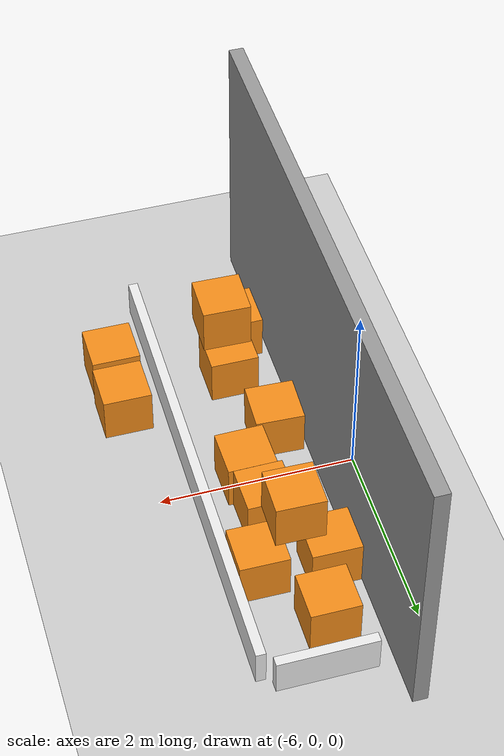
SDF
<sdf version="1.6">
 <world name="default">
  <model name="ground_plane">
   <static>1</static>
   <link name="link">
    <collision name="collision">
     <geometry><plane><normal>0 0 1</normal><size>100 100</size></plane></geometry>
     <surface>
      <contact><collide_bitmask>65535</collide_bitmask></contact>
      <friction><ode><mu>100</mu><mu2>50</mu2></ode></friction>
     </surface>
    </collision>
    <visual name="visual">
     <cast_shadows>0</cast_shadows>
     <geometry><plane><normal>0 0 1</normal><size>100 100</size></plane></geometry>
     <material>
      <script><uri>file://media/materials/scripts/gazebo.material</uri><name>Gazebo/Grey</name></script>
     </material>
    </visual>
   </link>
  </model>
  <model name="nrsl">
   <link name="Wall_3">
    <pose>-5.41 2.97 0 0 0 -1.5708</pose>
    <visual name="Wall_3_Visual">
     <pose>0 0 1.45 0 -0 0</pose>
     <geometry><box><size>6.09 0.15 2.9</size></box></geometry>
     <material>
      <script><uri>file://media/materials/scripts/gazebo.material</uri><name>Gazebo/Grey</name></script>
      <ambient>1 1 1 1</ambient>
     </material>
     <meta><layer>0</layer></meta>
    </visual>
    <collision name="Wall_3_Collision">
     <pose>0 0 1.45 0 -0 0</pose>
     <geometry><box><size>6.09 0.15 2.9</size></box></geometry>
     <surface>
      <friction>
       <ode><mu>1</mu><mu2>1</mu2><fdir1>0 0 0</fdir1><slip1>0</slip1><slip2>0</slip2></ode>
       <torsional>
        <coefficient>1</coefficient>
        <patch_radius>0</patch_radius>
        <surface_radius>0</surface_radius>
        <use_patch_radius>1</use_patch_radius>
        <ode><slip>0</slip></ode>
       </torsional>
      </friction>
      <bounce><restitution_coefficient>0</restitution_coefficient><threshold>1e+06</threshold></bounce>
      <contact>
       <collide_without_contact>0</collide_without_contact>
       <collide_without_contact_bitmask>1</collide_without_contact_bitmask>
       <collide_bitmask>1</collide_bitmask>
       <ode>
        <soft_cfm>0</soft_cfm>
        <soft_erp>0.2</soft_erp>
        <kp>1e+13</kp>
        <kd>1</kd>
        <max_vel>0.01</max_vel>
        <min_depth>0</min_depth>
       </ode>
       <bullet>
        <split_impulse>1</split_impulse>
        <split_impulse_penetration_threshold>-0.01</split_impulse_penetration_threshold>
        <soft_cfm>0</soft_cfm>
        <soft_erp>0.2</soft_erp>
        <kp>1e+13</kp>
        <kd>1</kd>
       </bullet>
      </contact>
     </surface>
    </collision>
   </link>
   <static>1</static>
   <pose>-0.282297 -3.10716 0 0 -0 0</pose>
  </model>
  <model name="fence1_1">
   <link name="link">
    <inertial>
     <mass>1</mass>
     <inertia>
      <ixx>0.166667</ixx>
      <ixy>0</ixy>
      <ixz>0</ixz>
      <iyy>0.166667</iyy>
      <iyz>0</iyz>
      <izz>0.166667</izz>
     </inertia>
    </inertial>
    <visual name="visual">
     <geometry><box><size>1 0.1 0.4</size></box></geometry>
     <material>
      <script><name>Gazebo/White</name><uri>file://media/materials/scripts/gazebo.material</uri></script>
     </material>
     <pose>0 0 0.2 0 -0 0</pose>
    </visual>
    <collision name="collision">
     <pose>0 0 0.2 0 -0 0</pose>
     <geometry><box><size>1 0.1 0.4</size></box></geometry>
     <surface>
      <friction>
       <ode><mu>1</mu><mu2>1</mu2><fdir1>0 0 0</fdir1><slip1>0</slip1><slip2>0</slip2></ode>
       <torsional>
        <coefficient>1</coefficient>
        <patch_radius>0</patch_radius>
        <surface_radius>0</surface_radius>
        <use_patch_radius>1</use_patch_radius>
        <ode><slip>0</slip></ode>
       </torsional>
      </friction>
      <bounce><restitution_coefficient>0</restitution_coefficient><threshold>1e+06</threshold></bounce>
      <contact>
       <collide_without_contact>0</collide_without_contact>
       <collide_without_contact_bitmask>1</collide_without_contact_bitmask>
       <collide_bitmask>1</collide_bitmask>
       <ode>
        <soft_cfm>0</soft_cfm>
        <soft_erp>0.2</soft_erp>
        <kp>1e+13</kp>
        <kd>1</kd>
        <max_vel>0.01</max_vel>
        <min_depth>0</min_depth>
       </ode>
       <bullet>
        <split_impulse>1</split_impulse>
        <split_impulse_penetration_threshold>-0.01</split_impulse_penetration_threshold>
        <soft_cfm>0</soft_cfm>
        <soft_erp>0.2</soft_erp>
        <kp>1e+13</kp>
        <kd>1</kd>
       </bullet>
      </contact>
     </surface>
    </collision>
   </link>
   <static>0</static>
   <pose>-4.95728 2.40507 -4e-06 0 -8e-06 0</pose>
  </model>
  <model name="box_0">
   <link name="link">
    <inertial>
     <mass>1</mass>
     <inertia>
      <ixx>0.166667</ixx>
      <ixy>0</ixy>
      <ixz>0</ixz>
      <iyy>0.166667</iyy>
      <iyz>0</iyz>
      <izz>0.166667</izz>
     </inertia>
    </inertial>
    <visual name="visual">
     <geometry><box><size>0.5 0.5 0.5</size></box></geometry>
     <material>
      <script><name>Gazebo/Orange</name><uri>file://media/materials/scripts/gazebo.material</uri></script>
     </material>
     <pose>0 0 0.25 0 -0 0</pose>
    </visual>
    <collision name="collision">
     <pose>0 0 0.25 0 -0 0</pose>
     <geometry><box><size>0.5 0.5 0.5</size></box></geometry>
     <surface>
      <friction>
       <ode><mu>1</mu><mu2>1</mu2><fdir1>0 0 0</fdir1><slip1>0</slip1><slip2>0</slip2></ode>
       <torsional>
        <coefficient>1</coefficient>
        <patch_radius>0</patch_radius>
        <surface_radius>0</surface_radius>
        <use_patch_radius>1</use_patch_radius>
        <ode><slip>0</slip></ode>
       </torsional>
      </friction>
      <bounce><restitution_coefficient>0</restitution_coefficient><threshold>1e+06</threshold></bounce>
      <contact>
       <collide_without_contact>0</collide_without_contact>
       <collide_without_contact_bitmask>1</collide_without_contact_bitmask>
       <collide_bitmask>1</collide_bitmask>
       <ode>
        <soft_cfm>0</soft_cfm>
        <soft_erp>0.2</soft_erp>
        <kp>1e+13</kp>
        <kd>1</kd>
        <max_vel>0.01</max_vel>
        <min_depth>0</min_depth>
       </ode>
       <bullet>
        <split_impulse>1</split_impulse>
        <split_impulse_penetration_threshold>-0.01</split_impulse_penetration_threshold>
        <soft_cfm>0</soft_cfm>
        <soft_erp>0.2</soft_erp>
        <kp>1e+13</kp>
        <kd>1</kd>
       </bullet>
      </contact>
     </surface>
    </collision>
   </link>
   <static>0</static>
   <pose>-5.29935 -1.94695 -0 0 0 -0.000204</pose>
  </model>
  <model name="box_1">
   <link name="link">
    <inertial>
     <mass>1</mass>
     <inertia>
      <ixx>0.166667</ixx>
      <ixy>0</ixy>
      <ixz>0</ixz>
      <iyy>0.166667</iyy>
      <iyz>0</iyz>
      <izz>0.166667</izz>
     </inertia>
    </inertial>
    <visual name="visual">
     <geometry><box><size>0.5 0.5 0.5</size></box></geometry>
     <material>
      <script><name>Gazebo/Orange</name><uri>file://media/materials/scripts/gazebo.material</uri></script>
     </material>
     <pose>0 0 0.25 0 -0 0</pose>
    </visual>
    <collision name="collision">
     <pose>0 0 0.25 0 -0 0</pose>
     <geometry><box><size>0.5 0.5 0.5</size></box></geometry>
     <surface>
      <friction>
       <ode><mu>1</mu><mu2>1</mu2><fdir1>0 0 0</fdir1><slip1>0</slip1><slip2>0</slip2></ode>
       <torsional>
        <coefficient>1</coefficient>
        <patch_radius>0</patch_radius>
        <surface_radius>0</surface_radius>
        <use_patch_radius>1</use_patch_radius>
        <ode><slip>0</slip></ode>
       </torsional>
      </friction>
      <bounce><restitution_coefficient>0</restitution_coefficient><threshold>1e+06</threshold></bounce>
      <contact>
       <collide_without_contact>0</collide_without_contact>
       <collide_without_contact_bitmask>1</collide_without_contact_bitmask>
       <collide_bitmask>1</collide_bitmask>
       <ode>
        <soft_cfm>0</soft_cfm>
        <soft_erp>0.2</soft_erp>
        <kp>1e+13</kp>
        <kd>1</kd>
        <max_vel>0.01</max_vel>
        <min_depth>0</min_depth>
       </ode>
       <bullet>
        <split_impulse>1</split_impulse>
        <split_impulse_penetration_threshold>-0.01</split_impulse_penetration_threshold>
        <soft_cfm>0</soft_cfm>
        <soft_erp>0.2</soft_erp>
        <kp>1e+13</kp>
        <kd>1</kd>
       </bullet>
      </contact>
     </surface>
    </collision>
   </link>
   <static>0</static>
   <pose>-5.10578 -1.43632 -0 0 -0 0.000631</pose>
  </model>
  <model name="box_3">
   <link name="link">
    <inertial>
     <mass>1</mass>
     <inertia>
      <ixx>0.166667</ixx>
      <ixy>0</ixy>
      <ixz>0</ixz>
      <iyy>0.166667</iyy>
      <iyz>0</iyz>
      <izz>0.166667</izz>
     </inertia>
    </inertial>
    <visual name="visual">
     <geometry><box><size>0.5 0.5 0.5</size></box></geometry>
     <material>
      <script><name>Gazebo/Orange</name><uri>file://media/materials/scripts/gazebo.material</uri></script>
     </material>
     <pose>0 0 0.25 0 -0 0</pose>
    </visual>
    <collision name="collision">
     <pose>0 0 0.25 0 -0 0</pose>
     <geometry><box><size>0.5 0.5 0.5</size></box></geometry>
     <surface>
      <friction>
       <ode><mu>1</mu><mu2>1</mu2><fdir1>0 0 0</fdir1><slip1>0</slip1><slip2>0</slip2></ode>
       <torsional>
        <coefficient>1</coefficient>
        <patch_radius>0</patch_radius>
        <surface_radius>0</surface_radius>
        <use_patch_radius>1</use_patch_radius>
        <ode><slip>0</slip></ode>
       </torsional>
      </friction>
      <bounce><restitution_coefficient>0</restitution_coefficient><threshold>1e+06</threshold></bounce>
      <contact>
       <collide_without_contact>0</collide_without_contact>
       <collide_without_contact_bitmask>1</collide_without_contact_bitmask>
       <collide_bitmask>1</collide_bitmask>
       <ode>
        <soft_cfm>0</soft_cfm>
        <soft_erp>0.2</soft_erp>
        <kp>1e+13</kp>
        <kd>1</kd>
        <max_vel>0.01</max_vel>
        <min_depth>0</min_depth>
       </ode>
       <bullet>
        <split_impulse>1</split_impulse>
        <split_impulse_penetration_threshold>-0.01</split_impulse_penetration_threshold>
        <soft_cfm>0</soft_cfm>
        <soft_erp>0.2</soft_erp>
        <kp>1e+13</kp>
        <kd>1</kd>
       </bullet>
      </contact>
     </surface>
    </collision>
   </link>
   <static>0</static>
   <pose>-5.36531 1.20161 -0 -0 -0 -0.007956</pose>
  </model>
  <model name="box_4">
   <link name="link">
    <inertial>
     <mass>1</mass>
     <inertia>
      <ixx>0.166667</ixx>
      <ixy>0</ixy>
      <ixz>0</ixz>
      <iyy>0.166667</iyy>
      <iyz>0</iyz>
      <izz>0.166667</izz>
     </inertia>
    </inertial>
    <visual name="visual">
     <geometry><box><size>0.5 0.5 0.5</size></box></geometry>
     <material>
      <script><name>Gazebo/Orange</name><uri>file://media/materials/scripts/gazebo.material</uri></script>
     </material>
     <pose>0 0 0.25 0 -0 0</pose>
    </visual>
    <collision name="collision">
     <pose>0 0 0.25 0 -0 0</pose>
     <geometry><box><size>0.5 0.5 0.5</size></box></geometry>
     <surface>
      <friction>
       <ode><mu>1</mu><mu2>1</mu2><fdir1>0 0 0</fdir1><slip1>0</slip1><slip2>0</slip2></ode>
       <torsional>
        <coefficient>1</coefficient>
        <patch_radius>0</patch_radius>
        <surface_radius>0</surface_radius>
        <use_patch_radius>1</use_patch_radius>
        <ode><slip>0</slip></ode>
       </torsional>
      </friction>
      <bounce><restitution_coefficient>0</restitution_coefficient><threshold>1e+06</threshold></bounce>
      <contact>
       <collide_without_contact>0</collide_without_contact>
       <collide_without_contact_bitmask>1</collide_without_contact_bitmask>
       <collide_bitmask>1</collide_bitmask>
       <ode>
        <soft_cfm>0</soft_cfm>
        <soft_erp>0.2</soft_erp>
        <kp>1e+13</kp>
        <kd>1</kd>
        <max_vel>0.01</max_vel>
        <min_depth>0</min_depth>
       </ode>
       <bullet>
        <split_impulse>1</split_impulse>
        <split_impulse_penetration_threshold>-0.01</split_impulse_penetration_threshold>
        <soft_cfm>0</soft_cfm>
        <soft_erp>0.2</soft_erp>
        <kp>1e+13</kp>
        <kd>1</kd>
       </bullet>
      </contact>
     </surface>
    </collision>
   </link>
   <static>0</static>
   <pose>-4.66654 1.15732 -0 -0 -0 -0.007609</pose>
  </model>
  <model name="box_2">
   <link name="link">
    <inertial>
     <mass>1</mass>
     <inertia>
      <ixx>0.166667</ixx>
      <ixy>0</ixy>
      <ixz>0</ixz>
      <iyy>0.166667</iyy>
      <iyz>0</iyz>
      <izz>0.166667</izz>
     </inertia>
    </inertial>
    <visual name="visual">
     <geometry><box><size>0.5 0.5 0.5</size></box></geometry>
     <material>
      <script><name>Gazebo/Orange</name><uri>file://media/materials/scripts/gazebo.material</uri></script>
     </material>
     <pose>0 0 0.25 0 -0 0</pose>
    </visual>
    <collision name="collision">
     <pose>0 0 0.25 0 -0 0</pose>
     <geometry><box><size>0.5 0.5 0.5</size></box></geometry>
     <surface>
      <friction>
       <ode><mu>1</mu><mu2>1</mu2><fdir1>0 0 0</fdir1><slip1>0</slip1><slip2>0</slip2></ode>
       <torsional>
        <coefficient>1</coefficient>
        <patch_radius>0</patch_radius>
        <surface_radius>0</surface_radius>
        <use_patch_radius>1</use_patch_radius>
        <ode><slip>0</slip></ode>
       </torsional>
      </friction>
      <bounce><restitution_coefficient>0</restitution_coefficient><threshold>1e+06</threshold></bounce>
      <contact>
       <collide_without_contact>0</collide_without_contact>
       <collide_without_contact_bitmask>1</collide_without_contact_bitmask>
       <collide_bitmask>1</collide_bitmask>
       <ode>
        <soft_cfm>0</soft_cfm>
        <soft_erp>0.2</soft_erp>
        <kp>1e+13</kp>
        <kd>1</kd>
        <max_vel>0.01</max_vel>
        <min_depth>0</min_depth>
       </ode>
       <bullet>
        <split_impulse>1</split_impulse>
        <split_impulse_penetration_threshold>-0.01</split_impulse_penetration_threshold>
        <soft_cfm>0</soft_cfm>
        <soft_erp>0.2</soft_erp>
        <kp>1e+13</kp>
        <kd>1</kd>
       </bullet>
      </contact>
     </surface>
    </collision>
   </link>
   <static>0</static>
   <pose>-5.14223 1.85055 -0 0 -0 -0.000126</pose>
  </model>
  <model name="box_5">
   <link name="link">
    <inertial>
     <mass>1</mass>
     <inertia>
      <ixx>0.166667</ixx>
      <ixy>0</ixy>
      <ixz>0</ixz>
      <iyy>0.166667</iyy>
      <iyz>0</iyz>
      <izz>0.166667</izz>
     </inertia>
    </inertial>
    <visual name="visual">
     <geometry><box><size>0.5 0.5 0.5</size></box></geometry>
     <material>
      <script><name>Gazebo/Orange</name><uri>file://media/materials/scripts/gazebo.material</uri></script>
     </material>
     <pose>0 0 0.25 0 -0 0</pose>
    </visual>
    <collision name="collision">
     <pose>0 0 0.25 0 -0 0</pose>
     <geometry><box><size>0.5 0.5 0.5</size></box></geometry>
     <surface>
      <friction>
       <ode><mu>1</mu><mu2>1</mu2><fdir1>0 0 0</fdir1><slip1>0</slip1><slip2>0</slip2></ode>
       <torsional>
        <coefficient>1</coefficient>
        <patch_radius>0</patch_radius>
        <surface_radius>0</surface_radius>
        <use_patch_radius>1</use_patch_radius>
        <ode><slip>0</slip></ode>
       </torsional>
      </friction>
      <bounce><restitution_coefficient>0</restitution_coefficient><threshold>1e+06</threshold></bounce>
      <contact>
       <collide_without_contact>0</collide_without_contact>
       <collide_without_contact_bitmask>1</collide_without_contact_bitmask>
       <collide_bitmask>1</collide_bitmask>
       <ode>
        <soft_cfm>0</soft_cfm>
        <soft_erp>0.2</soft_erp>
        <kp>1e+13</kp>
        <kd>1</kd>
        <max_vel>0.01</max_vel>
        <min_depth>0</min_depth>
       </ode>
       <bullet>
        <split_impulse>1</split_impulse>
        <split_impulse_penetration_threshold>-0.01</split_impulse_penetration_threshold>
        <soft_cfm>0</soft_cfm>
        <soft_erp>0.2</soft_erp>
        <kp>1e+13</kp>
        <kd>1</kd>
       </bullet>
      </contact>
     </surface>
    </collision>
   </link>
   <static>0</static>
   <pose>-4.93995 0.467493 2e-06 -7e-06 0 0.01344</pose>
  </model>
  <model name="box_6">
   <link name="link">
    <inertial>
     <mass>1</mass>
     <inertia>
      <ixx>0.166667</ixx>
      <ixy>0</ixy>
      <ixz>0</ixz>
      <iyy>0.166667</iyy>
      <iyz>0</iyz>
      <izz>0.166667</izz>
     </inertia>
    </inertial>
    <visual name="visual">
     <geometry><box><size>0.5 0.5 0.5</size></box></geometry>
     <material>
      <script><name>Gazebo/Orange</name><uri>file://media/materials/scripts/gazebo.material</uri></script>
     </material>
     <pose>0 0 0.25 0 -0 0</pose>
    </visual>
    <collision name="collision">
     <pose>0 0 0.25 0 -0 0</pose>
     <geometry><box><size>0.5 0.5 0.5</size></box></geometry>
     <surface>
      <friction>
       <ode><mu>1</mu><mu2>1</mu2><fdir1>0 0 0</fdir1><slip1>0</slip1><slip2>0</slip2></ode>
       <torsional>
        <coefficient>1</coefficient>
        <patch_radius>0</patch_radius>
        <surface_radius>0</surface_radius>
        <use_patch_radius>1</use_patch_radius>
        <ode><slip>0</slip></ode>
       </torsional>
      </friction>
      <bounce><restitution_coefficient>0</restitution_coefficient><threshold>1e+06</threshold></bounce>
      <contact>
       <collide_without_contact>0</collide_without_contact>
       <collide_without_contact_bitmask>1</collide_without_contact_bitmask>
       <collide_bitmask>1</collide_bitmask>
       <ode>
        <soft_cfm>0</soft_cfm>
        <soft_erp>0.2</soft_erp>
        <kp>1e+13</kp>
        <kd>1</kd>
        <max_vel>0.01</max_vel>
        <min_depth>0</min_depth>
       </ode>
       <bullet>
        <split_impulse>1</split_impulse>
        <split_impulse_penetration_threshold>-0.01</split_impulse_penetration_threshold>
        <soft_cfm>0</soft_cfm>
        <soft_erp>0.2</soft_erp>
        <kp>1e+13</kp>
        <kd>1</kd>
       </bullet>
      </contact>
     </surface>
    </collision>
   </link>
   <static>0</static>
   <pose>-5.33462 -0.542722 -0 0 0 -0.040912</pose>
  </model>
  <model name="box_1_0">
   <link name="link">
    <inertial>
     <mass>1</mass>
     <inertia>
      <ixx>0.166667</ixx>
      <ixy>0</ixy>
      <ixz>0</ixz>
      <iyy>0.166667</iyy>
      <iyz>0</iyz>
      <izz>0.166667</izz>
     </inertia>
    </inertial>
    <visual name="visual">
     <geometry><box><size>0.5 0.5 0.5</size></box></geometry>
     <material>
      <script><name>Gazebo/Orange</name><uri>file://media/materials/scripts/gazebo.material</uri></script>
     </material>
     <pose>0 0 0.25 0 -0 0</pose>
    </visual>
    <collision name="collision">
     <pose>0 0 0.25 0 -0 0</pose>
     <geometry><box><size>0.5 0.5 0.5</size></box></geometry>
     <surface>
      <friction>
       <ode><mu>1</mu><mu2>1</mu2><fdir1>0 0 0</fdir1><slip1>0</slip1><slip2>0</slip2></ode>
       <torsional>
        <coefficient>1</coefficient>
        <patch_radius>0</patch_radius>
        <surface_radius>0</surface_radius>
        <use_patch_radius>1</use_patch_radius>
        <ode><slip>0</slip></ode>
       </torsional>
      </friction>
      <bounce><restitution_coefficient>0</restitution_coefficient><threshold>1e+06</threshold></bounce>
      <contact>
       <collide_without_contact>0</collide_without_contact>
       <collide_without_contact_bitmask>1</collide_without_contact_bitmask>
       <collide_bitmask>1</collide_bitmask>
       <ode>
        <soft_cfm>0</soft_cfm>
        <soft_erp>0.2</soft_erp>
        <kp>1e+13</kp>
        <kd>1</kd>
        <max_vel>0.01</max_vel>
        <min_depth>0</min_depth>
       </ode>
       <bullet>
        <split_impulse>1</split_impulse>
        <split_impulse_penetration_threshold>-0.01</split_impulse_penetration_threshold>
        <soft_cfm>0</soft_cfm>
        <soft_erp>0.2</soft_erp>
        <kp>1e+13</kp>
        <kd>1</kd>
       </bullet>
      </contact>
     </surface>
    </collision>
   </link>
   <static>0</static>
   <pose>-4.88602 -0.032148 -0 0 -0 0.013203</pose>
  </model>
  <model name="box_1_1">
   <link name="link">
    <inertial>
     <mass>1</mass>
     <inertia>
      <ixx>0.166667</ixx>
      <ixy>0</ixy>
      <ixz>0</ixz>
      <iyy>0.166667</iyy>
      <iyz>0</iyz>
      <izz>0.166667</izz>
     </inertia>
    </inertial>
    <visual name="visual">
     <geometry><box><size>0.5 0.5 0.5</size></box></geometry>
     <material>
      <script><name>Gazebo/Orange</name><uri>file://media/materials/scripts/gazebo.material</uri></script>
     </material>
     <pose>0 0 0.75 0 -0 0</pose>
    </visual>
    <collision name="collision">
     <pose>0 0 0.75 0 -0 0</pose>
     <geometry><box><size>0.5 0.5 0.5</size></box></geometry>
     <surface>
      <friction>
       <ode><mu>1</mu><mu2>1</mu2><fdir1>0 0 0</fdir1><slip1>0</slip1><slip2>0</slip2></ode>
       <torsional>
        <coefficient>1</coefficient>
        <patch_radius>0</patch_radius>
        <surface_radius>0</surface_radius>
        <use_patch_radius>1</use_patch_radius>
        <ode><slip>0</slip></ode>
       </torsional>
      </friction>
      <bounce><restitution_coefficient>0</restitution_coefficient><threshold>1e+06</threshold></bounce>
      <contact>
       <collide_without_contact>0</collide_without_contact>
       <collide_without_contact_bitmask>1</collide_without_contact_bitmask>
       <collide_bitmask>1</collide_bitmask>
       <ode>
        <soft_cfm>0</soft_cfm>
        <soft_erp>0.2</soft_erp>
        <kp>1e+13</kp>
        <kd>1</kd>
        <max_vel>0.01</max_vel>
        <min_depth>0</min_depth>
       </ode>
       <bullet>
        <split_impulse>1</split_impulse>
        <split_impulse_penetration_threshold>-0.01</split_impulse_penetration_threshold>
        <soft_cfm>0</soft_cfm>
        <soft_erp>0.2</soft_erp>
        <kp>1e+13</kp>
        <kd>1</kd>
       </bullet>
      </contact>
     </surface>
    </collision>
   </link>
   <static>0</static>
   <pose>-5.0734 0.96797 4.6e-05 -6.3e-05 -0.000161 -0.018638</pose>
  </model>
  <model name="box_1_2">
   <link name="link">
    <inertial>
     <mass>1</mass>
     <inertia>
      <ixx>0.166667</ixx>
      <ixy>0</ixy>
      <ixz>0</ixz>
      <iyy>0.166667</iyy>
      <iyz>0</iyz>
      <izz>0.166667</izz>
     </inertia>
    </inertial>
    <visual name="visual">
     <geometry><box><size>0.5 0.5 0.5</size></box></geometry>
     <material>
      <script><name>Gazebo/Orange</name><uri>file://media/materials/scripts/gazebo.material</uri></script>
     </material>
     <pose>0 0 0.75 0 -0 0</pose>
    </visual>
    <collision name="collision">
     <pose>0 0 0.75 0 -0 0</pose>
     <geometry><box><size>0.5 0.5 0.5</size></box></geometry>
     <surface>
      <friction>
       <ode><mu>1</mu><mu2>1</mu2><fdir1>0 0 0</fdir1><slip1>0</slip1><slip2>0</slip2></ode>
       <torsional>
        <coefficient>1</coefficient>
        <patch_radius>0</patch_radius>
        <surface_radius>0</surface_radius>
        <use_patch_radius>1</use_patch_radius>
        <ode><slip>0</slip></ode>
       </torsional>
      </friction>
      <bounce><restitution_coefficient>0</restitution_coefficient><threshold>1e+06</threshold></bounce>
      <contact>
       <collide_without_contact>0</collide_without_contact>
       <collide_without_contact_bitmask>1</collide_without_contact_bitmask>
       <collide_bitmask>1</collide_bitmask>
       <ode>
        <soft_cfm>0</soft_cfm>
        <soft_erp>0.2</soft_erp>
        <kp>1e+13</kp>
        <kd>1</kd>
        <max_vel>0.01</max_vel>
        <min_depth>0</min_depth>
       </ode>
       <bullet>
        <split_impulse>1</split_impulse>
        <split_impulse_penetration_threshold>-0.01</split_impulse_penetration_threshold>
        <soft_cfm>0</soft_cfm>
        <soft_erp>0.2</soft_erp>
        <kp>1e+13</kp>
        <kd>1</kd>
       </bullet>
      </contact>
     </surface>
    </collision>
   </link>
   <static>0</static>
   <pose>-5.10104 -1.68514 2.6e-05 0.000109 6e-06 -0.020924</pose>
  </model>
  <model name="box">
   <link name="link">
    <inertial>
     <mass>1</mass>
     <inertia>
      <ixx>0.166667</ixx>
      <ixy>0</ixy>
      <ixz>0</ixz>
      <iyy>0.166667</iyy>
      <iyz>0</iyz>
      <izz>0.166667</izz>
     </inertia>
    </inertial>
    <visual name="visual">
     <geometry><box><size>0.5 0.5 0.5</size></box></geometry>
     <material>
      <script><name>Gazebo/Orange</name><uri>file://media/materials/scripts/gazebo.material</uri></script>
     </material>
     <pose>0 0 0.25 0 -0 0</pose>
    </visual>
    <collision name="collision">
     <pose>0 0 0.25 0 -0 0</pose>
     <geometry><box><size>0.5 0.5 0.5</size></box></geometry>
     <surface>
      <friction>
       <ode><mu>1</mu><mu2>1</mu2><fdir1>0 0 0</fdir1><slip1>0</slip1><slip2>0</slip2></ode>
       <torsional>
        <coefficient>1</coefficient>
        <patch_radius>0</patch_radius>
        <surface_radius>0</surface_radius>
        <use_patch_radius>1</use_patch_radius>
        <ode><slip>0</slip></ode>
       </torsional>
      </friction>
      <bounce><restitution_coefficient>0</restitution_coefficient><threshold>1e+06</threshold></bounce>
      <contact>
       <collide_without_contact>0</collide_without_contact>
       <collide_without_contact_bitmask>1</collide_without_contact_bitmask>
       <collide_bitmask>1</collide_bitmask>
       <ode>
        <soft_cfm>0</soft_cfm>
        <soft_erp>0.2</soft_erp>
        <kp>1e+13</kp>
        <kd>1</kd>
        <max_vel>0.01</max_vel>
        <min_depth>0</min_depth>
       </ode>
       <bullet>
        <split_impulse>1</split_impulse>
        <split_impulse_penetration_threshold>-0.01</split_impulse_penetration_threshold>
        <soft_cfm>0</soft_cfm>
        <soft_erp>0.2</soft_erp>
        <kp>1e+13</kp>
        <kd>1</kd>
       </bullet>
      </contact>
     </surface>
    </collision>
   </link>
   <static>0</static>
   <pose>-3.9436 -1.79604 -0 0 -0 0</pose>
  </model>
  <model name="box_7">
   <link name="link">
    <inertial>
     <mass>1</mass>
     <inertia>
      <ixx>0.166667</ixx>
      <ixy>0</ixy>
      <ixz>0</ixz>
      <iyy>0.166667</iyy>
      <iyz>0</iyz>
      <izz>0.166667</izz>
     </inertia>
    </inertial>
    <visual name="visual">
     <geometry><box><size>0.5 0.5 0.5</size></box></geometry>
     <material>
      <script><name>Gazebo/Orange</name><uri>file://media/materials/scripts/gazebo.material</uri></script>
     </material>
     <pose>0 0 0.25 0 -0 0</pose>
    </visual>
    <collision name="collision">
     <pose>0 0 0.25 0 -0 0</pose>
     <geometry><box><size>0.5 0.5 0.5</size></box></geometry>
     <surface>
      <friction>
       <ode><mu>1</mu><mu2>1</mu2><fdir1>0 0 0</fdir1><slip1>0</slip1><slip2>0</slip2></ode>
       <torsional>
        <coefficient>1</coefficient>
        <patch_radius>0</patch_radius>
        <surface_radius>0</surface_radius>
        <use_patch_radius>1</use_patch_radius>
        <ode><slip>0</slip></ode>
       </torsional>
      </friction>
      <bounce><restitution_coefficient>0</restitution_coefficient><threshold>1e+06</threshold></bounce>
      <contact>
       <collide_without_contact>0</collide_without_contact>
       <collide_without_contact_bitmask>1</collide_without_contact_bitmask>
       <collide_bitmask>1</collide_bitmask>
       <ode>
        <soft_cfm>0</soft_cfm>
        <soft_erp>0.2</soft_erp>
        <kp>1e+13</kp>
        <kd>1</kd>
        <max_vel>0.01</max_vel>
        <min_depth>0</min_depth>
       </ode>
       <bullet>
        <split_impulse>1</split_impulse>
        <split_impulse_penetration_threshold>-0.01</split_impulse_penetration_threshold>
        <soft_cfm>0</soft_cfm>
        <soft_erp>0.2</soft_erp>
        <kp>1e+13</kp>
        <kd>1</kd>
       </bullet>
      </contact>
     </surface>
    </collision>
   </link>
   <static>0</static>
   <pose>-3.92492 -1.23113 -5e-06 2e-05 -0 -1e-05</pose>
  </model>
  <model name="fence">
   <link name="link">
    <inertial>
     <mass>1</mass>
     <inertia>
      <ixx>0.166667</ixx>
      <ixy>0</ixy>
      <ixz>0</ixz>
      <iyy>0.166667</iyy>
      <iyz>0</iyz>
      <izz>0.166667</izz>
     </inertia>
    </inertial>
    <pose>0 0 0 0 -0 1.57</pose>
    <visual name="visual">
     <geometry><box><size>5 0.1 0.4</size></box></geometry>
     <material>
      <script><name>Gazebo/White</name><uri>file://media/materials/scripts/gazebo.material</uri></script>
     </material>
     <pose>0 0 0.2 0 -0 0</pose>
    </visual>
    <collision name="collision">
     <pose>0 0 0.2 0 -0 0</pose>
     <geometry><box><size>5 0.1 0.4</size></box></geometry>
     <surface>
      <friction>
       <ode><mu>1</mu><mu2>1</mu2><fdir1>0 0 0</fdir1><slip1>0</slip1><slip2>0</slip2></ode>
       <torsional>
        <coefficient>1</coefficient>
        <patch_radius>0</patch_radius>
        <surface_radius>0</surface_radius>
        <use_patch_radius>1</use_patch_radius>
        <ode><slip>0</slip></ode>
       </torsional>
      </friction>
      <bounce><restitution_coefficient>0</restitution_coefficient><threshold>1e+06</threshold></bounce>
      <contact>
       <collide_without_contact>0</collide_without_contact>
       <collide_without_contact_bitmask>1</collide_without_contact_bitmask>
       <collide_bitmask>1</collide_bitmask>
       <ode>
        <soft_cfm>0</soft_cfm>
        <soft_erp>0.2</soft_erp>
        <kp>1e+13</kp>
        <kd>1</kd>
        <max_vel>0.01</max_vel>
        <min_depth>0</min_depth>
       </ode>
       <bullet>
        <split_impulse>1</split_impulse>
        <split_impulse_penetration_threshold>-0.01</split_impulse_penetration_threshold>
        <soft_cfm>0</soft_cfm>
        <soft_erp>0.2</soft_erp>
        <kp>1e+13</kp>
        <kd>1</kd>
       </bullet>
      </contact>
     </surface>
    </collision>
   </link>
   <static>0</static>
   <pose>-4.3761 -0.197227 -4e-06 -2e-06 -1.5e-05 -0.006367</pose>
  </model>
 </world>
</sdf>
